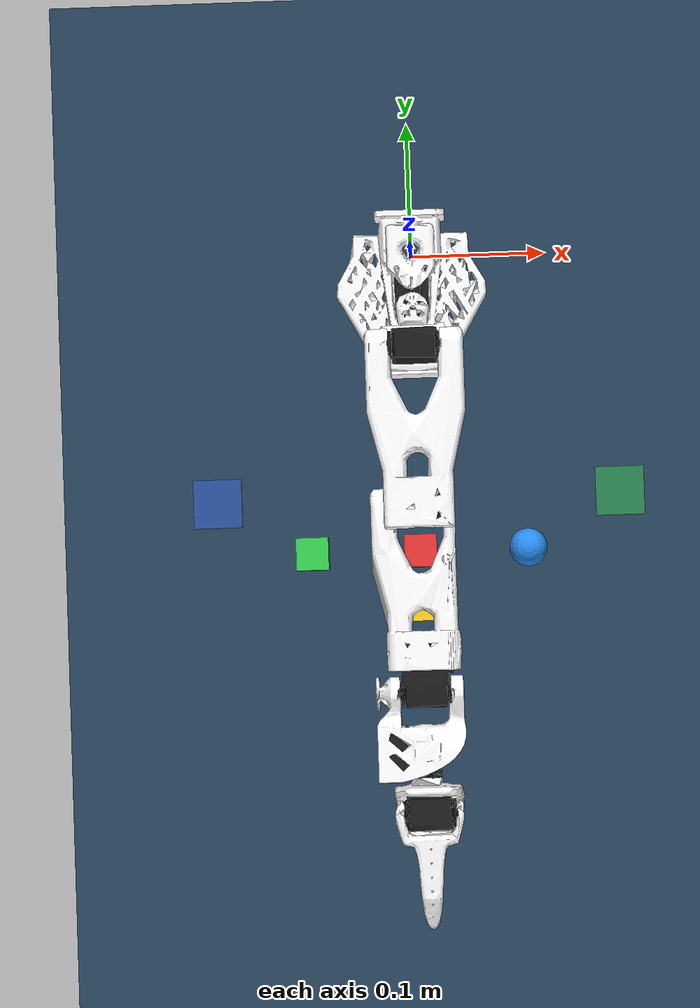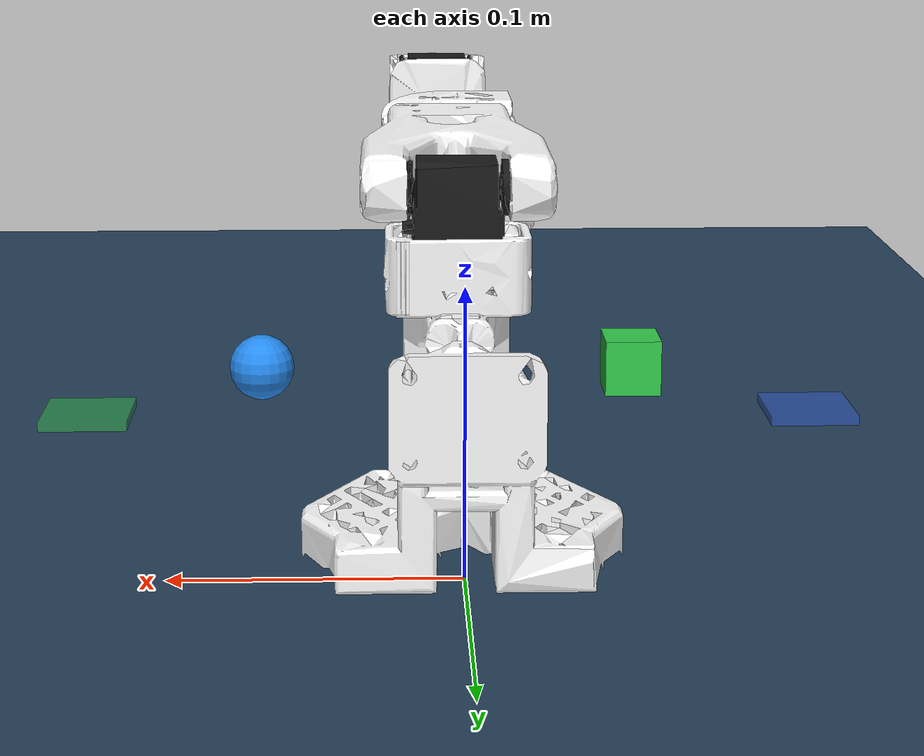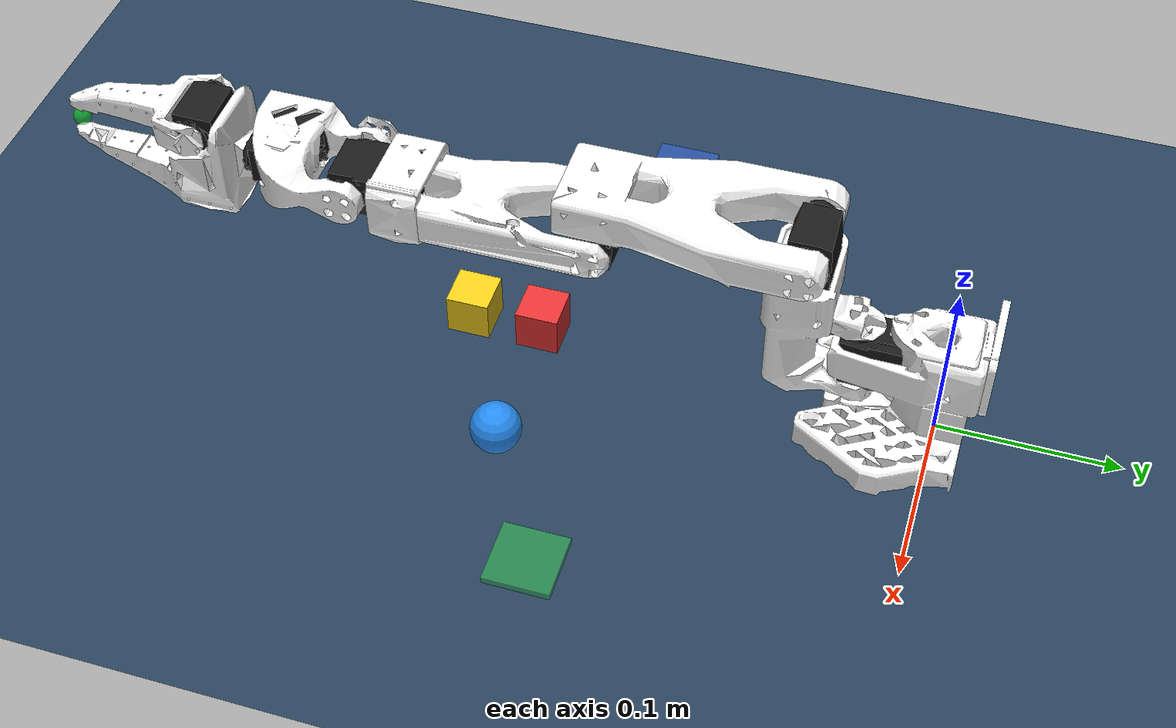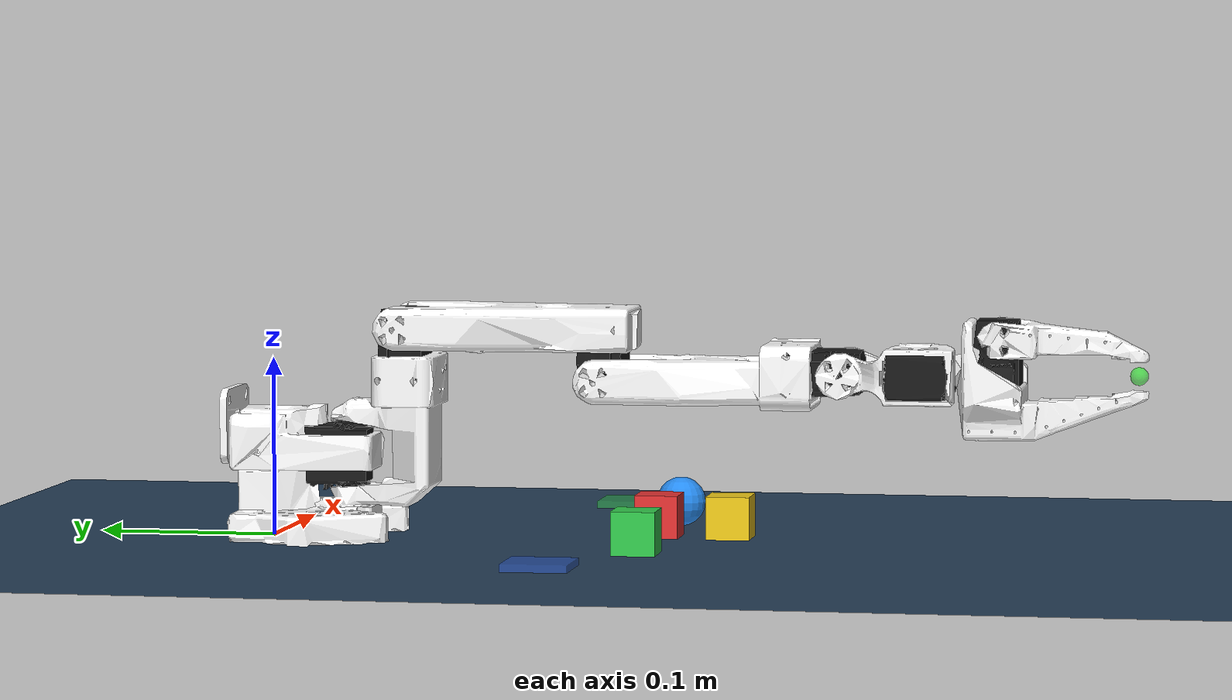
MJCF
<mujoco model="so_arm100_interactive">
  <include file="so_arm100.xml"/>

  <visual>
    <headlight diffuse="0.6 0.6 0.6" ambient="0.3 0.3 0.3" specular="0 0 0"/>
    <rgba haze="0.15 0.25 0.35 1"/>
    <global azimuth="45" elevation="-20"/>
  </visual>

  <asset>
    <texture type="skybox" builtin="gradient" rgb1="0.3 0.5 0.7" rgb2="0 0 0" width="512" height="3072"/>
    <texture type="2d" name="groundplane" builtin="checker" mark="edge" rgb1="0.2 0.3 0.4" rgb2="0.1 0.2 0.3"
      markrgb="0.8 0.8 0.8" width="300" height="300"/>
    <material name="groundplane" texture="groundplane" texuniform="true" texrepeat="5 5" reflectance="0.2"/>
    <material name="cube_mat" rgba="0.9 0.2 0.2 1"/>
    <material name="green_cube_mat" rgba="0.2 0.8 0.3 1"/>
    <material name="yellow_cube_mat" rgba="0.95 0.8 0.1 1"/>
    <material name="sphere_mat" rgba="0.15 0.55 0.95 1"/>
    <material name="target_mat_right" rgba="0.2 0.8 0.3 0.5"/>
    <material name="target_mat_left" rgba="0.2 0.4 0.9 0.5"/>
  </asset>

  <worldbody>
    <light pos="0 0 1.5" dir="0 0 -1" directional="true"/>
    <geom name="floor" size="0 0 0.05" type="plane" material="groundplane"/>

    <!-- Manipulatable Cube 1 (Red) -->
    <body name="red_cube" pos="0 -0.22 0.015">
      <joint type="free"/>
      <geom name="cube_geom" type="box" size="0.012 0.012 0.012" material="cube_mat" density="400"
            friction="2.0 0.1 0.005" solimp="2 1 0.01" solref="0.01 1"/>
    </body>

    <!-- Manipulatable Cube 2 (Green) -->
    <body name="green_cube" pos="-0.08 -0.22 0.015">
      <joint type="free"/>
      <geom name="green_cube_geom" type="box" size="0.012 0.012 0.012" material="green_cube_mat" density="400"
            friction="2.0 0.1 0.005" solimp="2 1 0.01" solref="0.01 1"/>
    </body>

    <!-- Manipulatable Cube 3 (Yellow) -->
    <body name="yellow_cube" pos="0 -0.26 0.015">
      <joint type="free"/>
      <geom name="yellow_cube_geom" type="box" size="0.012 0.012 0.012" material="yellow_cube_mat" density="400"
            friction="2.0 0.1 0.005" solimp="2 1 0.01" solref="0.01 1"/>
    </body>

    <!-- Manipulatable Sphere -->
    <body name="blue_sphere" pos="0.08 -0.22 0.014">
      <joint type="free"/>
      <geom name="sphere_geom" type="sphere" size="0.014" material="sphere_mat" density="400"
            friction="2.0 0.1 0.02" solimp="2 1 0.01" solref="0.01 1"/>
    </body>

    <!-- Target drop zones -->
    <site name="target_right" pos="0.15 -0.18 0.005" size="0.018 0.018 0.002" type="box" material="target_mat_right"/>
    <site name="target_left" pos="-0.15 -0.18 0.005" size="0.018 0.018 0.002" type="box" material="target_mat_left"/>
  </worldbody>
</mujoco>

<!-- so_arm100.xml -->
<mujoco model="so_arm100">
  <compiler angle="radian" meshdir="assets/"/>

  <option cone="elliptic" impratio="10"/>

  <asset>
    <material name="white" rgba="1 1 1 1"/>
    <material name="black" rgba="0.1 0.1 0.1 1"/>

    <mesh name="Base" file="Base.stl"/>
    <mesh name="Base_Motor" file="Base_Motor.stl"/>
    <mesh name="Rotation_Pitch" file="Rotation_Pitch.stl"/>
    <mesh name="Rotation_Pitch_Motor" file="Rotation_Pitch_Motor.stl"/>
    <mesh name="Upper_Arm" file="Upper_Arm.stl"/>
    <mesh name="Upper_Arm_Motor" file="Upper_Arm_Motor.stl"/>
    <mesh name="Lower_Arm" file="Lower_Arm.stl"/>
    <mesh name="Lower_Arm_Motor" file="Lower_Arm_Motor.stl"/>
    <mesh name="Wrist_Pitch_Roll" file="Wrist_Pitch_Roll.stl"/>
    <mesh name="Wrist_Pitch_Roll_Motor" file="Wrist_Pitch_Roll_Motor.stl"/>
    <mesh name="Fixed_Jaw" file="Fixed_Jaw.stl"/>
    <mesh name="Fixed_Jaw_Motor" file="Fixed_Jaw_Motor.stl"/>
    <mesh name="Fixed_Jaw_Collision_1" file="Fixed_Jaw_Collision_1.stl"/>
    <mesh name="Fixed_Jaw_Collision_2" file="Fixed_Jaw_Collision_2.stl"/>
    <mesh name="Moving_Jaw" file="Moving_Jaw.stl"/>
    <mesh name="Moving_Jaw_Collision_1" file="Moving_Jaw_Collision_1.stl"/>
    <mesh name="Moving_Jaw_Collision_2" file="Moving_Jaw_Collision_2.stl"/>
    <mesh name="Moving_Jaw_Collision_3" file="Moving_Jaw_Collision_3.stl"/>
  </asset>

  <default>
    <default class="so_arm100">
      <joint frictionloss="0.1" armature="0.1"/>
      <position kp="50" dampratio="1" forcerange="-3.5 3.5"/>
      <default class="Rotation">
        <joint axis="0 1 0" range="-1.92 1.92"/>
      </default>
      <default class="Pitch">
        <joint axis="1 0 0" range="-3.32 0.174"/>
      </default>
      <default class="Elbow">
        <joint axis="1 0 0" range="-0.174 3.14"/>
      </default>
      <default class="Wrist_Pitch">
        <joint axis="1 0 0" range="-1.66 1.66"/>
      </default>
      <default class="Wrist_Roll">
        <joint axis="0 1 0" range="-2.79 2.79"/>
      </default>
      <default class="Jaw">
        <joint axis="0 0 1" range="-0.174 1.75"/>
      </default>
      <default class="visual">
        <geom type="mesh" contype="0" conaffinity="0" density="0" group="2" material="white"/>
        <default class="motor_visual">
          <geom material="black"/>
        </default>
      </default>
      <default class="collision">
        <geom group="3" type="mesh" material="white"/>
        <default class="finger_collision">
          <geom type="box" solimp="2 1 0.01" solref="0.01 1" friction="1 0.005 0.0001"/>
        </default>
      </default>
    </default>
  </default>

  <worldbody>
    <body name="Base" childclass="so_arm100">
      <geom type="mesh" mesh="Base" class="visual"/>
      <geom type="mesh" mesh="Base_Motor" class="motor_visual"/>
      <geom type="mesh" mesh="Base" class="collision"/>
      <body name="Rotation_Pitch" pos="0 -0.0452 0.0165" quat="0.707105 0.707108 0 0">
        <inertial pos="-9.07886e-05 0.0590972 0.031089" quat="0.363978 0.441169 -0.623108 0.533504" mass="0.119226"
          diaginertia="5.94278e-05 5.89975e-05 3.13712e-05"/>
        <joint name="Rotation" class="Rotation"/>
        <geom type="mesh" mesh="Rotation_Pitch" class="visual"/>
        <geom type="mesh" mesh="Rotation_Pitch_Motor" class="motor_visual"/>
        <geom type="mesh" mesh="Rotation_Pitch" class="collision"/>
        <body name="Upper_Arm" pos="0 0.1025 0.0306" euler="1.57079 0 0">
          <inertial pos="-1.72052e-05 0.0701802 0.00310545" quat="0.50104 0.498994 -0.493562 0.50632" mass="0.162409"
            diaginertia="0.000213312 0.000167164 7.01522e-05"/>
          <joint name="Pitch" class="Pitch"/>
          <geom type="mesh" mesh="Upper_Arm" class="visual"/>
          <geom type="mesh" mesh="Upper_Arm_Motor" class="motor_visual"/>
          <geom type="mesh" mesh="Upper_Arm" class="collision"/>
          <body name="Lower_Arm" pos="0 0.11257 0.028" euler="-1.57079 0 0">
            <inertial pos="-0.00339604 0.00137796 0.0768007" quat="0.701995 0.0787996 0.0645626 0.704859"
              mass="0.147968" diaginertia="0.000138803 0.000107748 4.84242e-05"/>
            <joint name="Elbow" class="Elbow"/>
            <geom type="mesh" mesh="Lower_Arm" class="visual"/>
            <geom type="mesh" mesh="Lower_Arm_Motor" class="motor_visual"/>
            <geom type="mesh" mesh="Lower_Arm" class="collision"/>
            <body name="Wrist_Pitch_Roll" pos="0 0.0052 0.1349" euler="-1.57079 0 0">
              <inertial pos="-0.00852653 -0.0352279 -2.34622e-05" quat="-0.0522806 0.705235 0.0549524 0.704905"
                mass="0.0661321" diaginertia="3.45403e-05 2.39041e-05 1.94704e-05"/>
              <joint name="Wrist_Pitch" class="Wrist_Pitch"/>
              <geom type="mesh" mesh="Wrist_Pitch_Roll" class="visual"/>
              <geom type="mesh" mesh="Wrist_Pitch_Roll_Motor" class="motor_visual"/>
              <geom type="mesh" mesh="Wrist_Pitch_Roll" class="collision"/>
              <body name="Fixed_Jaw" pos="0 -0.0601 0" euler="0 1.57079 0">
                <inertial pos="0.00552377 -0.0280167 0.000483583" quat="0.41836 0.620891 -0.350644 0.562599"
                  mass="0.0929859" diaginertia="5.03136e-05 4.64098e-05 2.72961e-05"/>
                <joint name="Wrist_Roll" class="Wrist_Roll"/>
                <geom type="mesh" mesh="Fixed_Jaw" class="visual"/>
                <geom type="mesh" mesh="Fixed_Jaw_Motor" class="motor_visual"/>
                <geom type="mesh" mesh="Fixed_Jaw_Collision_1" class="collision"/>
                <geom type="mesh" mesh="Fixed_Jaw_Collision_2" class="collision"/>
                <geom class="finger_collision" name="fixed_jaw_pad_1" size="0.001 0.005 0.004" pos="0.0089 -0.1014 0"/>
                <geom class="finger_collision" name="fixed_jaw_pad_2" size="0.001 0.005 0.006" pos="0.0109 -0.0914 0"/>
                <geom class="finger_collision" name="fixed_jaw_pad_3" size="0.001 0.01 0.007" pos="0.0126 -0.0768 0"/>
                <geom class="finger_collision" name="fixed_jaw_pad_4" size="0.001 0.01 0.008" pos="0.0143 -0.0572 0"/>
                <site name="grasp_site" pos="0.0 -0.1014 0.0" size="0.005" rgba="0 1 0 0.5"/>
                <!-- Gripper wrist camera looking down at the grasp site -->
                <camera name="wrist_camera" pos="0.0 -0.04 0.05" quat="0.0 0.0 0.42927 0.90317" fovy="65"/>
                <body name="Moving_Jaw" pos="-0.0202 -0.0244 0" quat="1.34924e-11 -3.67321e-06 1 -3.67321e-06">
                  <inertial pos="-0.00161745 -0.0303473 0.000449646" quat="0.696562 0.716737 -0.0239844 -0.0227026"
                    mass="0.0202444" diaginertia="1.11265e-05 8.99651e-06 2.99548e-06"/>
                  <joint name="Jaw" class="Jaw"/>
                  <geom type="mesh" mesh="Moving_Jaw" class="visual"/>
                  <geom type="mesh" mesh="Moving_Jaw_Collision_1" class="collision"/>
                  <geom type="mesh" mesh="Moving_Jaw_Collision_2" class="collision"/>
                  <geom type="mesh" mesh="Moving_Jaw_Collision_3" class="collision"/>
                  <geom class="finger_collision" name="moving_jaw_pad_1" size="0.001 0.005 0.004"
                    pos="-0.0113 -0.077 0"/>
                  <geom class="finger_collision" name="moving_jaw_pad_2" size="0.001 0.005 0.006"
                    pos="-0.0093 -0.067 0"/>
                  <geom class="finger_collision" name="moving_jaw_pad_3" size="0.001 0.01 0.006"
                    pos="-0.0073 -0.055 0"/>
                  <geom class="finger_collision" name="moving_jaw_pad_4" size="0.001 0.01 0.008"
                    pos="-0.0073 -0.035 0"/>
                </body>
              </body>
            </body>
          </body>
        </body>
      </body>
    </body>
  </worldbody>

  <actuator>
    <position class="Rotation" name="Rotation" joint="Rotation" inheritrange="1"/>
    <position class="Pitch" name="Pitch" joint="Pitch" inheritrange="1"/>
    <position class="Elbow" name="Elbow" joint="Elbow" inheritrange="1"/>
    <position class="Wrist_Pitch" name="Wrist_Pitch" joint="Wrist_Pitch" inheritrange="1"/>
    <position class="Wrist_Roll" name="Wrist_Roll" joint="Wrist_Roll" inheritrange="1"/>
    <position class="Jaw" name="Jaw" joint="Jaw" inheritrange="1"/>
  </actuator>

  <contact>
    <exclude body1="Base" body2="Rotation_Pitch"/>
  </contact>
</mujoco>
